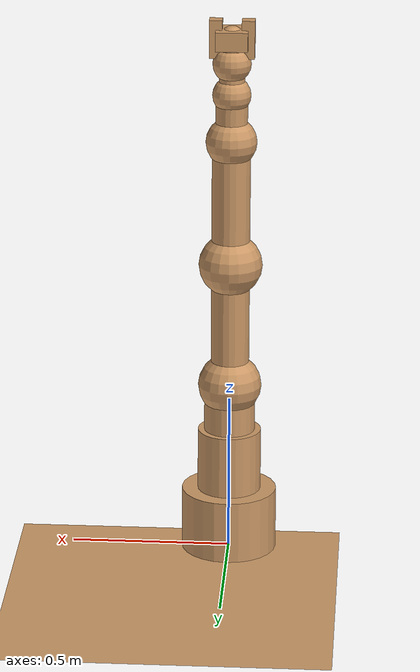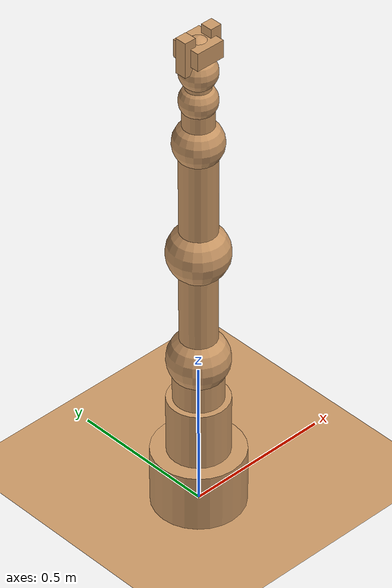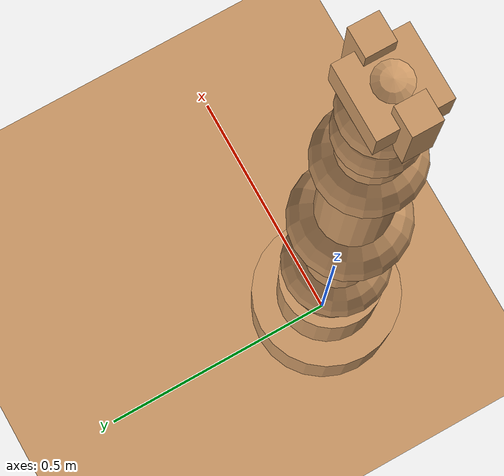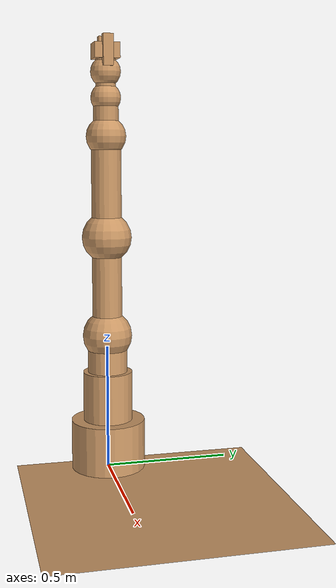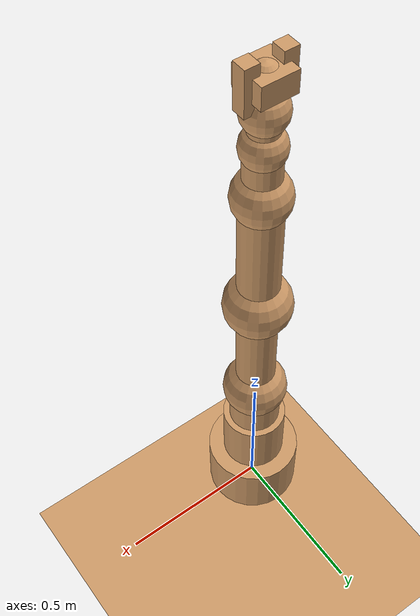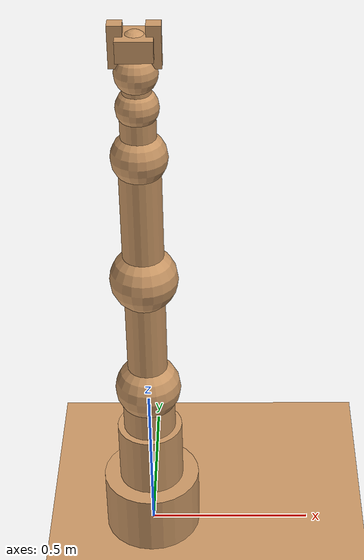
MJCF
<?xml version="1.0" encoding="utf-8"?>
<mujoco model="6-DOF Robotic Arm">
  <!-- 编译器选项 -->
  <compiler angle="radian" inertiafromgeom="true"/>

  <!-- 默认设置 -->
  <default>
    <!-- 关节默认设置 -->
    <joint limited="true" damping="0.1" armature="0.01"/>

    <!-- 几何体默认设置 -->
    <geom contype="0" conaffinity="0" condim="3" friction="1 0.005 0.0001" rgba="0.8 0.6 0.4 1"/>

    <!-- 电机默认设置 -->
    <motor ctrlrange="-2.0 2.0" ctrllimited="true"/>

    <!-- 站点默认设置 -->
    <site rgba="1 0 0 1" size="0.01"/>
  </default>

  <!-- 选项 -->
  <option timestep="0.01" gravity="0 0 -9.81" iterations="50" integrator="RK4" cone="elliptic"/>

  <!-- 资源 -->
  <asset>
    <!-- 材质 -->
    <material name="metal" rgba="0.7 0.7 0.7 1" specular="1" shininess="0.5"/>
    <material name="joint" rgba="0.3 0.5 0.8 1" specular="0.5" shininess="0.1"/>
    <material name="link" rgba="0.8 0.2 0.2 1" specular="0.5" shininess="0.1"/>
    <material name="gripper" rgba="0.2 0.8 0.2 1" specular="0.5" shininess="0.1"/>
    <material name="ground" rgba="0.9 0.9 0.9 1"/>

    <!-- 纹理 -->
    <texture name="skybox" type="skybox" builtin="gradient" rgb1="0.3 0.5 0.7" rgb2="0.1 0.1 0.1" width="512" height="512"/>
    <texture name="plane" type="2d" builtin="checker" rgb1="0.2 0.3 0.4" rgb2="0.1 0.2 0.3" width="300" height="300"/>

    <!-- 网格 -->
    <!-- Removed mesh reference as the file doesn't exist -->
  </asset>

  <!-- 世界体 -->
  <worldbody>
    <!-- 光照 -->
    <light directional="true" diffuse="0.8 0.8 0.8" specular="0.3 0.3 0.3" pos="0 0 4" dir="0 0 -1"/>
    <light pos="2 2 3" dir="-0.5 -0.5 -1" diffuse="0.5 0.5 0.5"/>

    <!-- 地面 -->
    <geom name="ground" type="plane" size="2 2 0.1" material="ground" pos="0 0 -0.1"/>

    <!-- 基座 -->
    <body name="base" pos="0 0 0">
      <geom name="base_geom" type="cylinder" size="0.15 0.1" pos="0 0 0.1" material="metal"/>
      <geom name="base_geom2" type="cylinder" size="0.1 0.2" pos="0 0 0.2" material="metal"/>

      <!-- 关节1 - 旋转基座 -->
      <body name="link1" pos="0 0 0.25">
        <joint name="joint1" type="hinge" pos="0 0 0" axis="0 0 1" range="-180 180" damping="0.5"/>
        <geom name="link1_geom" type="cylinder" size="0.08 0.2" pos="0 0 0.1" material="link"/>

        <!-- 关节2 - 肩关节 -->
        <body name="link2" pos="0 0 0.3">
          <joint name="joint2" type="hinge" pos="0 0 0" axis="0 1 0" range="-90 90" damping="0.5"/>
          <geom name="link2_geom" type="capsule" size="0.06" fromto="0 0 0 0 0 0.4" material="link"/>
          <geom name="joint2_geom" type="sphere" size="0.1" pos="0 0 0" material="joint"/>

          <!-- 关节3 - 肘关节 -->
          <body name="link3" pos="0 0 0.4">
            <joint name="joint3" type="hinge" pos="0 0 0" axis="0 1 0" range="-90 90" damping="0.5"/>
            <geom name="link3_geom" type="capsule" size="0.06" fromto="0 0 0 0 0 0.4" material="link"/>
            <geom name="joint3_geom" type="sphere" size="0.1" pos="0 0 0" material="joint"/>

            <!-- 关节4 - 手腕1 -->
            <body name="link4" pos="0 0 0.4">
              <joint name="joint4" type="hinge" pos="0 0 0" axis="1 0 0" range="-180 180" damping="0.5"/>
              <geom name="link4_geom" type="capsule" size="0.05" fromto="0 0 0 0 0 0.15" material="link"/>
              <geom name="joint4_geom" type="sphere" size="0.08" pos="0 0 0" material="joint"/>

              <!-- 关节5 - 手腕2 -->
              <body name="link5" pos="0 0 0.15">
                <joint name="joint5" type="hinge" pos="0 0 0" axis="0 1 0" range="-90 90" damping="0.5"/>
                <geom name="link5_geom" type="capsule" size="0.04" fromto="0 0 0 0 0 0.1" material="link"/>
                <geom name="joint5_geom" type="sphere" size="0.06" pos="0 0 0" material="joint"/>

                <!-- 关节6 - 手腕3 -->
                <body name="link6" pos="0 0 0.1">
                  <joint name="joint6" type="hinge" pos="0 0 0" axis="1 0 0" range="-180 180" damping="0.5"/>
                  <geom name="link6_geom" type="capsule" size="0.04" fromto="0 0 0 0 0 0.08" material="link"/>
                  <geom name="joint6_geom" type="sphere" size="0.06" pos="0 0 0" material="joint"/>

                  <!-- 末端执行器（夹爪基座） -->
                  <body name="gripper_base" pos="0 0 0.08">
                    <geom name="gripper_base_geom" type="box" size="0.05 0.05 0.03" material="gripper"/>

                    <!-- 左侧夹爪 -->
                    <body name="left_gripper" pos="-0.05 0 0">
                      <joint name="left_gripper_joint" type="slide" axis="1 0 0" range="-0.02 0.05" damping="0.1"/>
                      <geom name="left_gripper_geom" type="box" size="0.02 0.02 0.06" pos="0 0 0" material="gripper"/>
                    </body>

                    <!-- 右侧夹爪 -->
                    <body name="right_gripper" pos="0.05 0 0">
                      <joint name="right_gripper_joint" type="slide" axis="-1 0 0" range="-0.02 0.05" damping="0.1"/>
                      <geom name="right_gripper_geom" type="box" size="0.02 0.02 0.06" pos="0 0 0" material="gripper"/>
                    </body>
                  </body>
                </body>
              </body>
            </body>
          </body>
        </body>
      </body>
    </body>

    <!-- 相机 -->
    <camera name="fixed" pos="2 2 1" xyaxes="1 0 0 0 1 0" mode="fixed"/>
    <camera name="tracking" pos="0 -2 1" xyaxes="1 0 0 0 0 1" mode="trackcom"/>
    <camera name="side" pos="-1.5 0 0.5" xyaxes="0 -1 0 0 0 1" mode="fixed"/>
  </worldbody>

  <!-- 执行器 -->
  <actuator>
    <!-- 6个关节电机 -->
    <motor name="motor_joint1" joint="joint1" gear="50" ctrlrange="-2.0 2.0" ctrllimited="true"/>
    <motor name="motor_joint2" joint="joint2" gear="50" ctrlrange="-2.0 2.0" ctrllimited="true"/>
    <motor name="motor_joint3" joint="joint3" gear="50" ctrlrange="-2.0 2.0" ctrllimited="true"/>
    <motor name="motor_joint4" joint="joint4" gear="30" ctrlrange="-2.0 2.0" ctrllimited="true"/>
    <motor name="motor_joint5" joint="joint5" gear="30" ctrlrange="-2.0 2.0" ctrllimited="true"/>
    <motor name="motor_joint6" joint="joint6" gear="30" ctrlrange="-2.0 2.0" ctrllimited="true"/>

    <!-- 夹爪电机 -->
    <motor name="gripper_motor" joint="left_gripper_joint" gear="10" ctrlrange="-0.02 0.05" ctrllimited="true"/>
    <motor name="gripper_motor2" joint="right_gripper_joint" gear="10" ctrlrange="-0.02 0.05" ctrllimited="true"/>
  </actuator>

  <!-- 传感器 -->
  <sensor>
    <!-- 关节位置传感器 -->
    <jointpos name="joint1_pos" joint="joint1"/>
    <jointpos name="joint2_pos" joint="joint2"/>
    <jointpos name="joint3_pos" joint="joint3"/>
    <jointpos name="joint4_pos" joint="joint4"/>
    <jointpos name="joint5_pos" joint="joint5"/>
    <jointpos name="joint6_pos" joint="joint6"/>

    <!-- 关节速度传感器 -->
    <jointvel name="joint1_vel" joint="joint1"/>
    <jointvel name="joint2_vel" joint="joint2"/>
    <jointvel name="joint3_vel" joint="joint3"/>

    <!-- 末端执行器位置 -->
    <framepos name="gripper_pos" objtype="body" objname="gripper_base"/>
  </sensor>
</mujoco>
